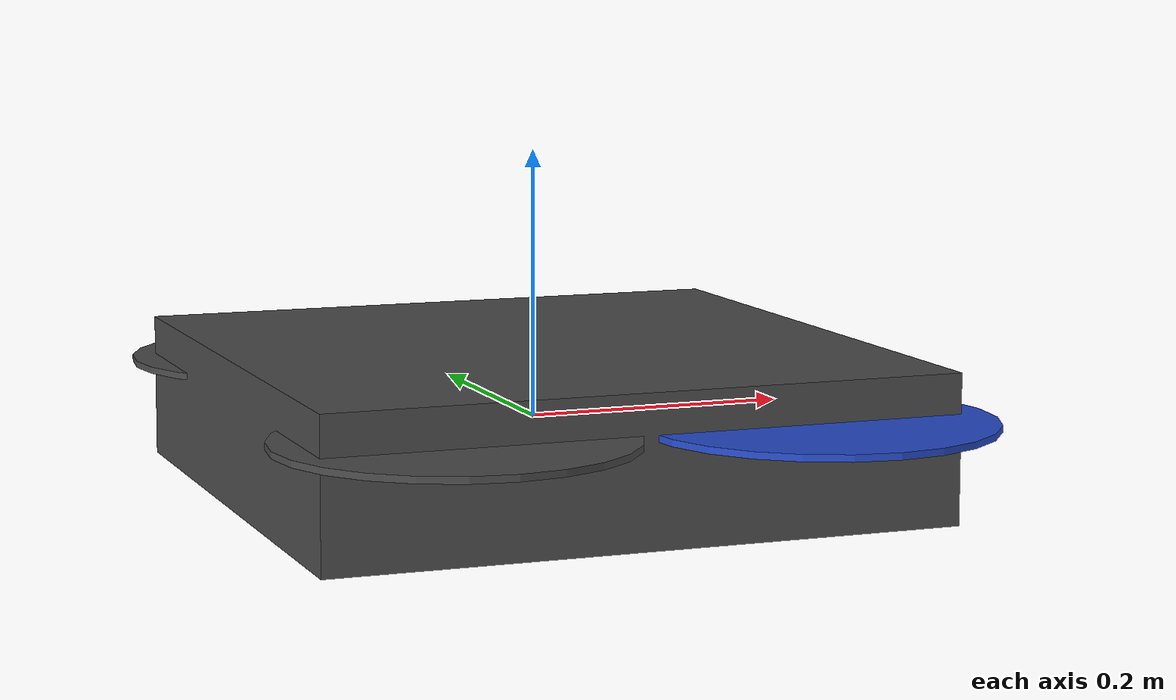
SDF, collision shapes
<?xml version="1.0" ?>
<sdf version="1.5">
     <model name='camIrisGPSNoise'>
            <plugin name="p3d_base_controller" filename="libgazebo_ros_p3d.so">
                <alwaysOn>true</alwaysOn>
                <updateRate>30.0</updateRate>
                <bodyName>base_link</bodyName>
                <topicName>groundTruth</topicName>
                <frameName>world</frameName>
                <xyzOffsets>0 0 0</xyzOffsets>
                <rpyOffsets>0 0 0</rpyOffsets>
            </plugin>
            <link name='base_link'>
                <sensor name='downCam' type='camera'>
                    <pose frame=''>-0 0 0 0 1.57 0</pose>
                    <camera name='__default__'>
                        <horizontal_fov>1.047</horizontal_fov>
                        <image>
                            <width>640</width>
                            <height>480</height>
                        </image>
                        <clip>
                            <near>0.5</near>
                            <far>65</far>
                        </clip>
                    </camera>
                    <always_on>1</always_on>
                    <visualize>1</visualize>
                    <update_rate>10</update_rate>
                    <plugin name='camera_controller' filename='/opt/ros/kinetic/lib/libgazebo_ros_camera.so'>
                        <imageTopicName>/image_raw</imageTopicName>
                        <cameraInfoTopicName>/camera_info</cameraInfoTopicName>
                        <CxPrime>312.283495</CxPrime>
                        <Cx>312.283495</Cx>
                        <Cy>232.763465</Cy>
                    </plugin>
                </sensor>
                <pose frame=''>0 0 0 0 -0 0</pose>
                <inertial>
                    <pose frame=''>0 0 0 0 -0 0</pose>
                    <mass>1.5</mass>
                    <inertia>
                        <ixx>0.0347563</ixx>
                        <ixy>0</ixy>
                        <ixz>0</ixz>
                        <iyy>0.0458929</iyy>
                        <iyz>0</iyz>
                        <izz>0.0977</izz>
                    </inertia>
                </inertial>
                <collision name='base_link_inertia_collision'>
                    <pose frame=''>0 0 0 0 -0 0</pose>
                    <geometry>
                        <box>
                            <size>0.47 0.47 0.11</size>
                        </box>
                    </geometry>
                    <surface>
                        <contact>
                            <ode>
                                <min_depth>0.001</min_depth>
                                <max_vel>0</max_vel>
                            </ode>
                        </contact>
                        <friction>
                            <ode/>
                            <torsional>
                                <ode/>
                            </torsional>
                        </friction>
                        <bounce/>
                    </surface>
                    <max_contacts>10</max_contacts>
                </collision>
                <visual name='base_link_inertia_visual'>
                    <pose frame=''>0 0 0 0 -0 0</pose>
                    <geometry>
                        <mesh>
                            <scale>1 1 1</scale>
                            <uri>model://rotors_description/meshes/iris.stl</uri>
                        </mesh>
                    </geometry>
                    <material>
                        <script>
                            <name>Gazebo/DarkGrey</name>
                            <uri>file://media/materials/scripts/gazebo.material</uri>
                        </script>
                    </material>
                </visual>
                <gravity>1</gravity>
                <velocity_decay/>
                <self_collide>0</self_collide>
                <enable_wind>0</enable_wind>
                <kinematic>0</kinematic>
            </link>
            <link name='/imu_link'>
                <pose frame=''>0 0 0 0 -0 0</pose>
                <inertial>
                    <pose frame=''>0 0 0 0 -0 0</pose>
                    <mass>0.015</mass>
                    <inertia>
                        <ixx>1e-05</ixx>
                        <ixy>0</ixy>
                        <ixz>0</ixz>
                        <iyy>1e-05</iyy>
                        <iyz>0</iyz>
                        <izz>1e-05</izz>
                    </inertia>
                </inertial>
                <self_collide>0</self_collide>
                <enable_wind>0</enable_wind>
                <kinematic>0</kinematic>
            </link>
            <joint name='/imu_joint' type='revolute'>
                <child>/imu_link</child>
                <parent>base_link</parent>
                <axis>
                    <xyz>1 0 0</xyz>
                    <limit>
                        <lower>0</lower>
                        <upper>0</upper>
                        <effort>0</effort>
                        <velocity>0</velocity>
                    </limit>
                    <dynamics>
                        <spring_reference>0</spring_reference>
                        <spring_stiffness>0</spring_stiffness>
                    </dynamics>
                    <use_parent_model_frame>1</use_parent_model_frame>
                </axis>
            </joint>
            <link name='rotor_0'>
                <pose frame=''>0.13 -0.22 0.023 0 -0 0</pose>
                <inertial>
                    <pose frame=''>0 0 0 0 -0 0</pose>
                    <mass>0.005</mass>
                    <inertia>
                        <ixx>9.75e-07</ixx>
                        <ixy>0</ixy>
                        <ixz>0</ixz>
                        <iyy>0.000273104</iyy>
                        <iyz>0</iyz>
                        <izz>0.000274004</izz>
                    </inertia>
                </inertial>
                <collision name='rotor_0_collision'>
                    <pose frame=''>0 0 0 0 -0 0</pose>
                    <geometry>
                        <cylinder>
                            <length>0.005</length>
                            <radius>0.128</radius>
                        </cylinder>
                    </geometry>
                    <surface>
                        <contact>
                            <ode/>
                        </contact>
                        <friction>
                            <ode/>
                            <torsional>
                                <ode/>
                            </torsional>
                        </friction>
                        <bounce/>
                    </surface>
                    <max_contacts>10</max_contacts>
                </collision>
                <visual name='rotor_0_visual'>
                    <pose frame=''>0 0 0 0 -0 0</pose>
                    <geometry>
                        <mesh>
                            <scale>1 1 1</scale>
                            <uri>model://rotors_description/meshes/iris_prop_ccw.dae</uri>
                        </mesh>
                    </geometry>
                    <material>
                        <script>
                            <name>Gazebo/Blue</name>
                            <uri>file://media/materials/scripts/gazebo.material</uri>
                        </script>
                    </material>
                </visual>
                <gravity>1</gravity>
                <velocity_decay/>
                <self_collide>0</self_collide>
                <enable_wind>0</enable_wind>
                <kinematic>0</kinematic>
            </link>
            <joint name='rotor_0_joint' type='revolute'>
                <child>rotor_0</child>
                <parent>base_link</parent>
                <axis>
                    <xyz>0 0 1</xyz>
                    <limit>
                        <lower>-1e+16</lower>
                        <upper>1e+16</upper>
                    </limit>
                    <dynamics>
                        <spring_reference>0</spring_reference>
                        <spring_stiffness>0</spring_stiffness>
                    </dynamics>
                    <use_parent_model_frame>1</use_parent_model_frame>
                </axis>
            </joint>
            <link name='rotor_1'>
                <pose frame=''>-0.13 0.2 0.023 0 -0 0</pose>
                <inertial>
                    <pose frame=''>0 0 0 0 -0 0</pose>
                    <mass>0.005</mass>
                    <inertia>
                        <ixx>9.75e-07</ixx>
                        <ixy>0</ixy>
                        <ixz>0</ixz>
                        <iyy>0.000273104</iyy>
                        <iyz>0</iyz>
                        <izz>0.000274004</izz>
                    </inertia>
                </inertial>
                <collision name='rotor_1_collision'>
                    <pose frame=''>0 0 0 0 -0 0</pose>
                    <geometry>
                        <cylinder>
                            <length>0.005</length>
                            <radius>0.128</radius>
                        </cylinder>
                    </geometry>
                    <surface>
                        <contact>
                            <ode/>
                        </contact>
                        <friction>
                            <ode/>
                            <torsional>
                                <ode/>
                            </torsional>
                        </friction>
                        <bounce/>
                    </surface>
                    <max_contacts>10</max_contacts>
                </collision>
                <visual name='rotor_1_visual'>
                    <pose frame=''>0 0 0 0 -0 0</pose>
                    <geometry>
                        <mesh>
                            <scale>1 1 1</scale>
                            <uri>model://rotors_description/meshes/iris_prop_ccw.dae</uri>
                        </mesh>
                    </geometry>
                    <material>
                        <script>
                            <name>Gazebo/DarkGrey</name>
                            <uri>file://media/materials/scripts/gazebo.material</uri>
                        </script>
                    </material>
                </visual>
                <gravity>1</gravity>
                <velocity_decay/>
                <self_collide>0</self_collide>
                <enable_wind>0</enable_wind>
                <kinematic>0</kinematic>
            </link>
            <joint name='rotor_1_joint' type='revolute'>
                <child>rotor_1</child>
                <parent>base_link</parent>
                <axis>
                    <xyz>0 0 1</xyz>
                    <limit>
                        <lower>-1e+16</lower>
                        <upper>1e+16</upper>
                    </limit>
                    <dynamics>
                        <spring_reference>0</spring_reference>
                        <spring_stiffness>0</spring_stiffness>
                    </dynamics>
                    <use_parent_model_frame>1</use_parent_model_frame>
                </axis>
            </joint>
            <link name='rotor_2'>
                <pose frame=''>0.13 0.22 0.023 0 -0 0</pose>
                <inertial>
                    <pose frame=''>0 0 0 0 -0 0</pose>
                    <mass>0.005</mass>
                    <inertia>
                        <ixx>9.75e-07</ixx>
                        <ixy>0</ixy>
                        <ixz>0</ixz>
                        <iyy>0.000273104</iyy>
                        <iyz>0</iyz>
                        <izz>0.000274004</izz>
                    </inertia>
                </inertial>
                <collision name='rotor_2_collision'>
                    <pose frame=''>0 0 0 0 -0 0</pose>
                    <geometry>
                        <cylinder>
                            <length>0.005</length>
                            <radius>0.128</radius>
                        </cylinder>
                    </geometry>
                    <surface>
                        <contact>
                            <ode/>
                        </contact>
                        <friction>
                            <ode/>
                            <torsional>
                                <ode/>
                            </torsional>
                        </friction>
                        <bounce/>
                    </surface>
                    <max_contacts>10</max_contacts>
                </collision>
                <visual name='rotor_2_visual'>
                    <pose frame=''>0 0 0 0 -0 0</pose>
                    <geometry>
                        <mesh>
                            <scale>1 1 1</scale>
                            <uri>model://rotors_description/meshes/iris_prop_cw.dae</uri>
                        </mesh>
                    </geometry>
                    <material>
                        <script>
                            <name>Gazebo/Blue</name>
                            <uri>file://media/materials/scripts/gazebo.material</uri>
                        </script>
                    </material>
                </visual>
                <gravity>1</gravity>
                <velocity_decay/>
                <self_collide>0</self_collide>
                <enable_wind>0</enable_wind>
                <kinematic>0</kinematic>
            </link>
            <joint name='rotor_2_joint' type='revolute'>
                <child>rotor_2</child>
                <parent>base_link</parent>
                <axis>
                    <xyz>0 0 1</xyz>
                    <limit>
                        <lower>-1e+16</lower>
                        <upper>1e+16</upper>
                    </limit>
                    <dynamics>
                        <spring_reference>0</spring_reference>
                        <spring_stiffness>0</spring_stiffness>
                    </dynamics>
                    <use_parent_model_frame>1</use_parent_model_frame>
                </axis>
            </joint>
            <link name='rotor_3'>
                <pose frame=''>-0.13 -0.2 0.023 0 -0 0</pose>
                <inertial>
                    <pose frame=''>0 0 0 0 -0 0</pose>
                    <mass>0.005</mass>
                    <inertia>
                        <ixx>9.75e-07</ixx>
                        <ixy>0</ixy>
                        <ixz>0</ixz>
                        <iyy>0.000273104</iyy>
                        <iyz>0</iyz>
                        <izz>0.000274004</izz>
                    </inertia>
                </inertial>
                <collision name='rotor_3_collision'>
                    <pose frame=''>0 0 0 0 -0 0</pose>
                    <geometry>
                        <cylinder>
                            <length>0.005</length>
                            <radius>0.128</radius>
                        </cylinder>
                    </geometry>
                    <surface>
                        <contact>
                            <ode/>
                        </contact>
                        <friction>
                            <ode/>
                            <torsional>
                                <ode/>
                            </torsional>
                        </friction>
                        <bounce/>
                    </surface>
                    <max_contacts>10</max_contacts>
                </collision>
                <visual name='rotor_3_visual'>
                    <pose frame=''>0 0 0 0 -0 0</pose>
                    <geometry>
                        <mesh>
                            <scale>1 1 1</scale>
                            <uri>model://rotors_description/meshes/iris_prop_cw.dae</uri>
                        </mesh>
                    </geometry>
                    <material>
                        <script>
                            <name>Gazebo/DarkGrey</name>
                            <uri>file://media/materials/scripts/gazebo.material</uri>
                        </script>
                    </material>
                </visual>
                <gravity>1</gravity>
                <velocity_decay/>
                <self_collide>0</self_collide>
                <enable_wind>0</enable_wind>
                <kinematic>0</kinematic>
            </link>
            <joint name='rotor_3_joint' type='revolute'>
                <child>rotor_3</child>
                <parent>base_link</parent>
                <axis>
                    <xyz>0 0 1</xyz>
                    <limit>
                        <lower>-1e+16</lower>
                        <upper>1e+16</upper>
                    </limit>
                    <dynamics>
                        <spring_reference>0</spring_reference>
                        <spring_stiffness>0</spring_stiffness>
                    </dynamics>
                    <use_parent_model_frame>1</use_parent_model_frame>
                </axis>
            </joint>
            <plugin name='rosbag' filename='librotors_gazebo_multirotor_base_plugin.so'>
                <robotNamespace/>
                <linkName>base_link</linkName>
                <rotorVelocitySlowdownSim>10</rotorVelocitySlowdownSim>
            </plugin>
            <plugin name='front_right_motor_model' filename='librotors_gazebo_motor_model.so'>
                <robotNamespace/>
                <jointName>rotor_0_joint</jointName>
                <linkName>rotor_0</linkName>
                <turningDirection>ccw</turningDirection>
                <timeConstantUp>0.0125</timeConstantUp>
                <timeConstantDown>0.025</timeConstantDown>
                <maxRotVelocity>1100</maxRotVelocity>
                <motorConstant>8.54858e-06</motorConstant>
                <momentConstant>0.06</momentConstant>
                <commandSubTopic>/gazebo/command/motor_speed</commandSubTopic>
                <motorNumber>0</motorNumber>
                <rotorDragCoefficient>0.000806428</rotorDragCoefficient>
                <rollingMomentCoefficient>1e-06</rollingMomentCoefficient>
                <motorSpeedPubTopic>/motor_speed/0</motorSpeedPubTopic>
                <rotorVelocitySlowdownSim>10</rotorVelocitySlowdownSim>
            </plugin>
            <plugin name='back_left_motor_model' filename='librotors_gazebo_motor_model.so'>
                <robotNamespace/>
                <jointName>rotor_1_joint</jointName>
                <linkName>rotor_1</linkName>
                <turningDirection>ccw</turningDirection>
                <timeConstantUp>0.0125</timeConstantUp>
                <timeConstantDown>0.025</timeConstantDown>
                <maxRotVelocity>1100</maxRotVelocity>
                <motorConstant>8.54858e-06</motorConstant>
                <momentConstant>0.06</momentConstant>
                <commandSubTopic>/gazebo/command/motor_speed</commandSubTopic>
                <motorNumber>1</motorNumber>
                <rotorDragCoefficient>0.000806428</rotorDragCoefficient>
                <rollingMomentCoefficient>1e-06</rollingMomentCoefficient>
                <motorSpeedPubTopic>/motor_speed/1</motorSpeedPubTopic>
                <rotorVelocitySlowdownSim>10</rotorVelocitySlowdownSim>
            </plugin>
            <plugin name='front_left_motor_model' filename='librotors_gazebo_motor_model.so'>
                <robotNamespace/>
                <jointName>rotor_2_joint</jointName>
                <linkName>rotor_2</linkName>
                <turningDirection>cw</turningDirection>
                <timeConstantUp>0.0125</timeConstantUp>
                <timeConstantDown>0.025</timeConstantDown>
                <maxRotVelocity>1100</maxRotVelocity>
                <motorConstant>8.54858e-06</motorConstant>
                <momentConstant>0.06</momentConstant>
                <commandSubTopic>/gazebo/command/motor_speed</commandSubTopic>
                <motorNumber>2</motorNumber>
                <rotorDragCoefficient>0.000806428</rotorDragCoefficient>
                <rollingMomentCoefficient>1e-06</rollingMomentCoefficient>
                <motorSpeedPubTopic>/motor_speed/2</motorSpeedPubTopic>
                <rotorVelocitySlowdownSim>10</rotorVelocitySlowdownSim>
            </plugin>
            <plugin name='back_right_motor_model' filename='librotors_gazebo_motor_model.so'>
                <robotNamespace/>
                <jointName>rotor_3_joint</jointName>
                <linkName>rotor_3</linkName>
                <turningDirection>cw</turningDirection>
                <timeConstantUp>0.0125</timeConstantUp>
                <timeConstantDown>0.025</timeConstantDown>
                <maxRotVelocity>1100</maxRotVelocity>
                <motorConstant>8.54858e-06</motorConstant>
                <momentConstant>0.06</momentConstant>
                <commandSubTopic>/gazebo/command/motor_speed</commandSubTopic>
                <motorNumber>3</motorNumber>
                <rotorDragCoefficient>0.000806428</rotorDragCoefficient>
                <rollingMomentCoefficient>1e-06</rollingMomentCoefficient>
                <motorSpeedPubTopic>/motor_speed/3</motorSpeedPubTopic>
                <rotorVelocitySlowdownSim>10</rotorVelocitySlowdownSim>
            </plugin>
            <plugin name='gps_plugin' filename='libgazebo_gps_plugin.so'>
                <robotNamespace/>
                <gpsNoise>true</gpsNoise>
            </plugin>
            <plugin name='mavlink_interface' filename='librotors_gazebo_mavlink_interface.so'>
                <robotNamespace/>
                <imuSubTopic>/imu</imuSubTopic>
                <gpsSubTopic>/gps</gpsSubTopic>
                <mavlink_addr>INADDR_ANY</mavlink_addr>
                <mavlink_udp_port>14560</mavlink_udp_port>
                <serialEnabled>false</serialEnabled>
                <serialDevice>/dev/ttyACM0</serialDevice>
                <baudRate>921600</baudRate>
                <qgc_addr>INADDR_ANY</qgc_addr>
                <qgc_udp_port>14550</qgc_udp_port>
                <hil_mode>false</hil_mode>
                <hil_state_level>false</hil_state_level>
                <motorSpeedCommandPubTopic>/gazebo/command/motor_speed</motorSpeedCommandPubTopic>
                <control_channels>
                    <channel name='rotor1'>
                        <input_index>0</input_index>
                        <input_offset>0</input_offset>
                        <input_scaling>1000</input_scaling>
                        <zero_position_disarmed>0</zero_position_disarmed>
                        <zero_position_armed>100</zero_position_armed>
                        <joint_control_type>velocity</joint_control_type>
                    </channel>
                    <channel name='rotor2'>
                        <input_index>1</input_index>
                        <input_offset>0</input_offset>
                        <input_scaling>1000</input_scaling>
                        <zero_position_disarmed>0</zero_position_disarmed>
                        <zero_position_armed>100</zero_position_armed>
                        <joint_control_type>velocity</joint_control_type>
                    </channel>
                    <channel name='rotor3'>
                        <input_index>2</input_index>
                        <input_offset>0</input_offset>
                        <input_scaling>1000</input_scaling>
                        <zero_position_disarmed>0</zero_position_disarmed>
                        <zero_position_armed>100</zero_position_armed>
                        <joint_control_type>velocity</joint_control_type>
                    </channel>
                    <channel name='rotor4'>
                        <input_index>3</input_index>
                        <input_offset>0</input_offset>
                        <input_scaling>1000</input_scaling>
                        <zero_position_disarmed>0</zero_position_disarmed>
                        <zero_position_armed>100</zero_position_armed>
                        <joint_control_type>velocity</joint_control_type>
                    </channel>
                    <channel name='rotor5'>
                        <input_index>4</input_index>
                        <input_offset>1</input_offset>
                        <input_scaling>324.6</input_scaling>
                        <zero_position_disarmed>0</zero_position_disarmed>
                        <zero_position_armed>0</zero_position_armed>
                        <joint_control_type>velocity</joint_control_type>
                        <joint_control_pid>
                            <p>0.1</p>
                            <i>0</i>
                            <d>0</d>
                            <iMax>0.0</iMax>
                            <iMin>0.0</iMin>
                            <cmdMax>2</cmdMax>
                            <cmdMin>-2</cmdMin>
                        </joint_control_pid>
                        <joint_name>zephyr_delta_wing::propeller_joint</joint_name>
                    </channel>
                    <channel name='rotor6'>
                        <input_index>5</input_index>
                        <input_offset>0</input_offset>
                        <input_scaling>0.524</input_scaling>
                        <zero_position_disarmed>0</zero_position_disarmed>
                        <zero_position_armed>0</zero_position_armed>
                        <joint_control_type>position</joint_control_type>
                        <joint_name>zephyr_delta_wing::flap_left_joint</joint_name>
                        <joint_control_pid>
                            <p>10.0</p>
                            <i>0</i>
                            <d>0</d>
                            <iMax>0</iMax>
                            <iMin>0</iMin>
                            <cmdMax>20</cmdMax>
                            <cmdMin>-20</cmdMin>
                        </joint_control_pid>
                    </channel>
                    <channel name='rotor7'>
                        <input_index>6</input_index>
                        <input_offset>0</input_offset>
                        <input_scaling>0.524</input_scaling>
                        <zero_position_disarmed>0</zero_position_disarmed>
                        <zero_position_armed>0</zero_position_armed>
                        <joint_control_type>position</joint_control_type>
                        <joint_name>zephyr_delta_wing::flap_right_joint</joint_name>
                        <joint_control_pid>
                            <p>10.0</p>
                            <i>0</i>
                            <d>0</d>
                            <iMax>0</iMax>
                            <iMin>0</iMin>
                            <cmdMax>20</cmdMax>
                            <cmdMin>-20</cmdMin>
                        </joint_control_pid>
                    </channel>
                    <channel name='rotor8'>
                        <input_index>7</input_index>
                        <input_offset>0</input_offset>
                        <input_scaling>0.524</input_scaling>
                        <zero_position_disarmed>0</zero_position_disarmed>
                        <zero_position_armed>0</zero_position_armed>
                        <joint_control_type>position</joint_control_type>
                    </channel>
                </control_channels>
            </plugin>
            <static>0</static>
            <plugin name='rotors_gazebo_imu_plugin' filename='librotors_gazebo_imu_plugin.so'>
                <robotNamespace/>
                <linkName>/imu_link</linkName>
                <imuTopic>/imu</imuTopic>
                <gyroscopeNoiseDensity>0.0003394</gyroscopeNoiseDensity>
                <gyroscopeRandomWalk>3.8785e-05</gyroscopeRandomWalk>
                <gyroscopeBiasCorrelationTime>1000.0</gyroscopeBiasCorrelationTime>
                <gyroscopeTurnOnBiasSigma>0.0087</gyroscopeTurnOnBiasSigma>
                <accelerometerNoiseDensity>0.004</accelerometerNoiseDensity>
                <accelerometerRandomWalk>0.006</accelerometerRandomWalk>
                <accelerometerBiasCorrelationTime>300.0</accelerometerBiasCorrelationTime>
                <accelerometerTurnOnBiasSigma>0.196</accelerometerTurnOnBiasSigma>
            </plugin>
        </model>
</sdf>
